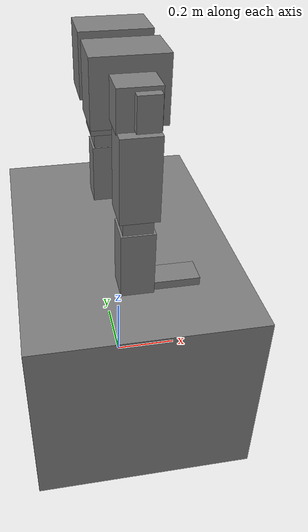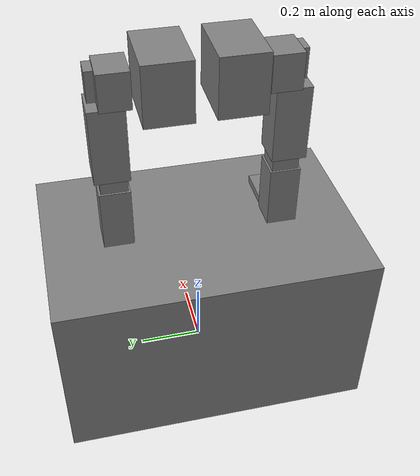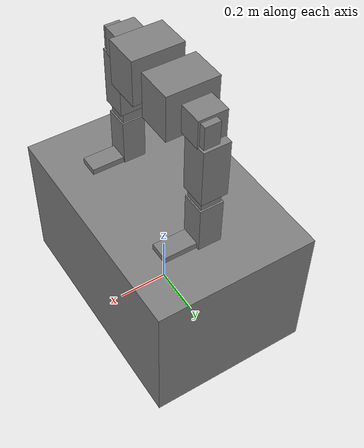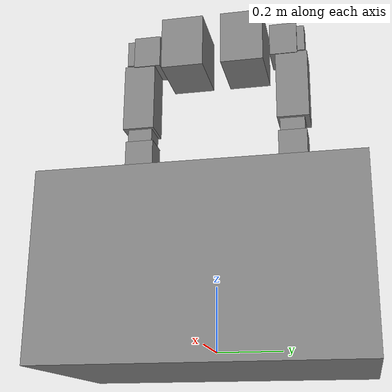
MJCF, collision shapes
<mujoco model="Bessica-D_ILStudio">
  <compiler angle="radian" meshdir="meshes/Bessica-D_v1_0/" autolimits="true" />
  <option cone="elliptic" impratio="20" timestep="0.001" iterations="100" noslip_iterations="10">
    <flag multiccd="enable"/>
  </option>

  <default>
    <default class="arm_position">
      <position kp="80" forcerange="-120 120"/>
    </default>
    <default class="finger_collision">
      <geom condim="6" friction="3 0.15 0.02" solimp="0.95 0.99 0.001 0.5 2" solref="0.002 1"/>
    </default>
    <default class="arm_collision">
      <geom type="box" condim="6" friction="1.5 0.08 0.01" solimp="0.98 0.995 0.001 0.5 2" solref="0.005 1"/>
    </default>
  </default>

  <asset>
    <mesh name="base_link" content_type="model/stl" file="base_link.STL"/>
    <mesh name="right_arm_base_link" content_type="model/stl" file="right_arm_base_link.STL"/>
    <mesh name="right_arm_link1" content_type="model/stl" file="right_arm_link1.STL"/>
    <mesh name="right_arm_link2" content_type="model/stl" file="right_arm_link2.STL"/>
    <mesh name="right_arm_link3" content_type="model/stl" file="right_arm_link3.STL"/>
    <mesh name="right_arm_link4" content_type="model/stl" file="right_arm_link4.STL"/>
    <mesh name="right_arm_link5" content_type="model/stl" file="right_arm_link5.STL"/>
    <mesh name="right_arm_link6" content_type="model/stl" file="right_arm_link6.STL"/>
    <mesh name="right_arm_link7" content_type="model/stl" file="right_arm_link7.STL"/>
    <mesh name="right_arm_gripper_left_finger" content_type="model/stl" file="right_arm_gripper_left_finger.STL"/>
    <mesh name="right_arm_gripper_right_finger" content_type="model/stl" file="right_arm_gripper_right_finger.STL"/>
    <mesh name="left_arm_base_link" content_type="model/stl" file="left_arm_base_link.STL"/>
    <mesh name="left_arm_link1" content_type="model/stl" file="left_arm_link1.STL"/>
    <mesh name="left_arm_link2" content_type="model/stl" file="left_arm_link2.STL"/>
    <mesh name="left_arm_link3" content_type="model/stl" file="left_arm_link3.STL"/>
    <mesh name="left_arm_link4" content_type="model/stl" file="left_arm_link4.STL"/>
    <mesh name="left_arm_link5" content_type="model/stl" file="left_arm_link5.STL"/>
    <mesh name="left_arm_link6" content_type="model/stl" file="left_arm_link6.STL"/>
    <mesh name="left_arm_link7" content_type="model/stl" file="left_arm_link7.STL"/>
    <mesh name="left_arm_gripper_left_finger" content_type="model/stl" file="left_arm_gripper_left_finger.STL"/>
    <mesh name="left_arm_gripper_right_finger" content_type="model/stl" file="left_arm_gripper_right_finger.STL"/>
  </asset>

  <worldbody>
    <body name="bessica_root" quat="0.707107 0 0 0.707107">
      <geom pos="0 0 0" quat="0.5 0.5 0.5 0.5" type="mesh" contype="0" conaffinity="0" group="1" density="0" rgba="0.807843 0.843137 0.905882 1" mesh="base_link"/>
      <geom class="arm_collision" pos="0 0 0.22" quat="0.5 0.5 0.5 0.5" size="0.32 0.28 0.48"/>
      <geom pos="-0.1 0 1.015" quat="-0.5 0.5 0.5 -0.5" type="mesh" contype="0" conaffinity="0" group="1" density="0" rgba="0.592157 0.666667 0.682353 1" mesh="right_arm_base_link"/>
      <geom class="arm_collision" pos="-0.1 0 1.015" quat="-0.5 0.5 0.5 -0.5" size="0.1 0.09 0.07"/>
      <geom pos="0.1 0 1.015" quat="0.5 0.5 0.5 0.5" type="mesh" contype="0" conaffinity="0" group="1" density="0" rgba="0.592157 0.666667 0.682353 1" mesh="left_arm_base_link"/>
      <geom class="arm_collision" pos="0.1 0 1.015" quat="0.5 0.5 0.5 0.5" size="0.1 0.09 0.07"/>
      <!-- Onboard RGB: head + dual wrist (body-fixed, not from scene XML) -->
      <!-- Head cam: offset in -body-Y (toward table) + lower Z so origin sits on front shell, not floating behind/above STL camera boss -->
      <!-- bessica_root quat: body +X -> world +Y; table ~+world X -> look along body -Y, pitched down -->
      <camera name="headview" pos="0 -0.09 1.12" xyaxes="-1 0 0 0 -0.642 0.766" fovy="65"/>
      <body name="right_arm_link1" pos="-0.2145 0 1.015" quat="-0.5 -0.5 -0.5 -0.5">
      <inertial pos="-3.24276e-05 3.91803e-05 -0.0169208" quat="0.082841 0.69859 -0.0864725 0.705431" mass="0.315734" diaginertia="0.000465509 0.000358966 0.000355103"/>
      <joint name="right_arm_joint1" pos="0 0 0" axis="0 0 -1" range="-2.14 2.14"/>
      <geom type="mesh" contype="0" conaffinity="0" group="1" density="0" rgba="0.796078 0.823529 0.937255 1" mesh="right_arm_link1"/>
      <geom class="arm_collision" size="0.055 0.055 0.045" pos="0 0 -0.018"/>
      <body name="right_arm_link2" pos="0 0 -0.04287" quat="0.5 -0.5 0.5 -0.5">
        <inertial pos="0.0294209 0.000476964 0.000518959" quat="0.611373 0.419718 0.487356 0.461025" mass="0.0501482" diaginertia="1.62891e-05 1.57687e-05 7.39432e-06"/>
        <joint name="right_arm_joint2" pos="0 0 0" axis="0 0 1" range="-2.14 2.14"/>
        <geom type="mesh" contype="0" conaffinity="0" group="1" density="0" rgba="0.807843 0.843137 0.905882 1" mesh="right_arm_link2"/>
        <geom class="arm_collision" size="0.045 0.045 0.03" pos="0 0 -0.018"/>
        <body name="right_arm_link3" pos="0.06575 -0.0001 0.0004" quat="0.5 0.5 -0.5 -0.5">
          <inertial pos="-0.00598311 -4.94635e-05 -0.106126" quat="0.998642 -0.000134885 -0.0520953 -0.000162259" mass="0.368447" diaginertia="0.000674481 0.000603424 0.00036087"/>
          <joint name="right_arm_joint3" pos="0 0 0" axis="0 0 -1" range="-2.14 2.14"/>
          <geom type="mesh" contype="0" conaffinity="0" group="1" density="0" rgba="0.807843 0.843137 0.905882 1" mesh="right_arm_link3"/>
          <geom class="arm_collision" size="0.052 0.052 0.115" pos="0 0 -0.1"/>
          <body name="right_arm_link4" pos="0.00384 0 -0.20081" quat="0.707107 -0.707107 0 0">
            <inertial pos="-0.000541939 0.0284058 0.000370347" quat="0.639534 0.763579 -0.0839367 0.0299576" mass="0.0480071" diaginertia="1.64685e-05 1.57747e-05 7.22527e-06"/>
            <joint name="right_arm_joint4" pos="0 0 0" axis="0 0 1" range="-2.14 2.14"/>
            <geom type="mesh" contype="0" conaffinity="0" group="1" density="0" rgba="0.807843 0.843137 0.905882 1" mesh="right_arm_link4"/>
            <geom class="arm_collision" size="0.04 0.06 0.04" pos="0 0.03 0"/>
            <body name="right_arm_link5" pos="0 0.06575 -0.0002" quat="0.707107 0.707107 0 0">
              <inertial pos="-0.00628109 0.000212854 -0.0715506" quat="0.702297 -0.0722103 -0.0708316 0.704661" mass="0.207077" diaginertia="0.000340616 0.000313554 0.000135687"/>
              <joint name="right_arm_joint5" pos="0 0 0" axis="0 0 -1" range="-2.14 2.14"/>
              <geom type="mesh" contype="0" conaffinity="0" group="1" density="0" rgba="0.807843 0.843137 0.905882 1" mesh="right_arm_link5"/>
              <geom class="arm_collision" size="0.046 0.046 0.098" pos="0 0 -0.09"/>
              <body name="right_arm_link6" pos="0.00379 5e-05 -0.1788" quat="0.707107 -0.707107 0 0">
                <inertial pos="-0.000759195 0.0240066 5.58164e-05" quat="0.999602 -0.00398416 -0.000608784 -0.0279095" mass="0.0325623" diaginertia="1.56847e-05 1.2779e-05 9.25012e-06"/>
                <joint name="right_arm_joint6" pos="0 0 0" axis="0 0 1" range="-2.14 2.14"/>
                <geom type="mesh" contype="0" conaffinity="0" group="1" density="0" rgba="0.807843 0.843137 0.905882 1" mesh="right_arm_link6"/>
                <geom class="arm_collision" size="0.038 0.045 0.092" pos="0 0.025 -0.085"/>
                <body name="right_arm_link7" pos="0.0001 0.0556 0.0001" quat="0.5 -0.5 -0.5 0.5">
                  <inertial pos="0.00328545 7.5068e-05 0.0541056" quat="-0.000334602 0.888022 0.000164703 0.4598" mass="0.18191" diaginertia="0.00121978 0.00104138 0.000232198"/>
                  <joint name="right_arm_joint7" pos="0 0 0" axis="0 0 1" range="-2.14 2.14"/>
                  <site name="tcp_right" type="sphere" size="0.008" rgba="1 0.2 0.2 0.35" pos="0 0 0"/>
                  <camera name="rightview" pos="0.08 0 0.03" xyaxes="0 -1 0 0 0 1" fovy="70"/>
                  <geom type="mesh" contype="0" conaffinity="0" group="1" density="0" rgba="0.592157 0.666667 0.682353 1" mesh="right_arm_link7"/>
                  <geom class="arm_collision" size="0.09 0.055 0.075" pos="0.065 0 0.03"/>
                  <body name="right_arm_gripper_left_finger" pos="0.14128 0 0.00015" quat="0.707105 0.707108 0 0">
                    <inertial pos="-0.0434087 0 -0.0106596" mass="0.0256463" diaginertia="8.03607e-06 6.46826e-06 5.13427e-06"/>
                    <joint name="right_arm_gripper_joint" pos="0 0 0" axis="0 0 -1" type="slide" range="0 0.0505"/>
                    <geom type="mesh" contype="0" conaffinity="0" group="1" density="0" rgba="0.592157 0.666667 0.682353 1" mesh="right_arm_gripper_left_finger"/>
                    <geom class="finger_collision" name="right_arm_left_pad_inner_front" type="box" size="0.022 0.01 0.0025" pos="-0.018 0 -0.001"/>
                    <geom class="finger_collision" name="right_arm_left_pad_inner_rear" type="box" size="0.018 0.01 0.0025" pos="-0.046 0 -0.001"/>
                  </body>
                  <body name="right_arm_gripper_right_finger" pos="0.14128 0 0.00015" quat="0.707105 -0.707108 0 0">
                    <inertial pos="-0.0434087 0 -0.0106596" mass="0.0256463" diaginertia="8.03607e-06 6.46826e-06 5.13427e-06"/>
                    <joint name="right_arm_gripper_mirror_joint" pos="0 0 0" axis="0 0 -1" type="slide" range="0 0.0505"/>
                    <geom type="mesh" contype="0" conaffinity="0" group="1" density="0" rgba="0.592157 0.666667 0.682353 1" mesh="right_arm_gripper_right_finger"/>
                    <geom class="finger_collision" name="right_arm_right_pad_inner_front" type="box" size="0.022 0.01 0.0025" pos="-0.018 0 -0.001"/>
                    <geom class="finger_collision" name="right_arm_right_pad_inner_rear" type="box" size="0.018 0.01 0.0025" pos="-0.046 0 -0.001"/>
                  </body>
                </body>
              </body>
            </body>
          </body>
        </body>
      </body>
      </body>
      <body name="left_arm_link1" pos="0.2145 0 1.015" quat="0.5 0.5 0.5 0.5">
      <inertial pos="3.24321e-05 3.91835e-05 0.0169208" quat="-0.0828376 0.69859 0.0864692 0.705431" mass="0.315734" diaginertia="0.000465509 0.000358966 0.000355103"/>
      <joint name="left_arm_joint1" pos="0 0 0" axis="0 0 -1" range="-2.14 2.14"/>
      <geom type="mesh" contype="0" conaffinity="0" group="1" density="0" rgba="0.796078 0.823529 0.937255 1" mesh="left_arm_link1"/>
      <geom class="arm_collision" size="0.055 0.055 0.045" pos="0 0 0.018"/>
      <body name="left_arm_link2" pos="0 0 0.04287" quat="0.5 0.5 -0.5 -0.5">
        <inertial pos="0.0294209 0.000476964 0.000518959" quat="0.611373 0.419718 0.487356 0.461025" mass="0.0501482" diaginertia="1.62891e-05 1.57687e-05 7.39432e-06"/>
        <joint name="left_arm_joint2" pos="0 0 0" axis="0 0 1" range="-2.14 2.14"/>
        <geom type="mesh" contype="0" conaffinity="0" group="1" density="0" rgba="0.807843 0.843137 0.905882 1" mesh="left_arm_link2"/>
        <geom class="arm_collision" size="0.045 0.045 0.03" pos="0 0 0.018"/>
        <body name="left_arm_link3" pos="0.06575 -0.0001 0.0004" quat="0.5 -0.5 0.5 -0.5">
          <inertial pos="-0.00607021 -7.96524e-05 0.105092" quat="0.998634 -0.00013549 0.0522467 0.00015883" mass="0.373333" diaginertia="0.000674969 0.000604631 0.00036243"/>
          <joint name="left_arm_joint3" pos="0 0 0" axis="0 0 -1" range="-2.14 2.14"/>
          <geom type="mesh" contype="0" conaffinity="0" group="1" density="0" rgba="0.807843 0.843137 0.905882 1" mesh="left_arm_link3"/>
          <geom class="arm_collision" size="0.052 0.052 0.115" pos="0 0 0.1"/>
          <body name="left_arm_link4" pos="0.00384 0 0.20081" quat="0.707107 0.707107 0 0">
            <inertial pos="-0.000541939 0.0284058 0.000370347" quat="0.639534 0.763579 -0.0839367 0.0299576" mass="0.0480071" diaginertia="1.64685e-05 1.57747e-05 7.22527e-06"/>
            <joint name="left_arm_joint4" pos="0 0 0" axis="0 0 1" range="-2.14 2.14"/>
            <geom type="mesh" contype="0" conaffinity="0" group="1" density="0" rgba="0.807843 0.843137 0.905882 1" mesh="left_arm_link4"/>
            <geom class="arm_collision" size="0.04 0.06 0.04" pos="0 0.03 0"/>
            <body name="left_arm_link5" pos="0 0.06575 -0.0002" quat="0.707107 -0.707107 0 0">
              <inertial pos="-0.00625733 -0.000212854 0.0763031" quat="0.704661 0.0708316 0.0722103 0.702297" mass="0.207077" diaginertia="0.000340616 0.000313554 0.000135687"/>
              <joint name="left_arm_joint5" pos="0 0 0" axis="0 0 -1" range="-2.14 2.14"/>
              <geom type="mesh" contype="0" conaffinity="0" group="1" density="0" rgba="0.807843 0.843137 0.905882 1" mesh="left_arm_link5"/>
              <geom class="arm_collision" size="0.046 0.046 0.098" pos="0 0 0.09"/>
              <body name="left_arm_link6" pos="0.00379 -5e-05 0.1788" quat="0.707107 0.707107 0 0">
                <inertial pos="-0.000759195 0.0240066 5.58164e-05" quat="0.999602 -0.00398416 -0.000608784 -0.0279095" mass="0.0325623" diaginertia="1.56847e-05 1.2779e-05 9.25012e-06"/>
                <joint name="left_arm_joint6" pos="0 0 0" axis="0 0 1" range="-2.14 2.14"/>
                <geom type="mesh" contype="0" conaffinity="0" group="1" density="0" rgba="0.807843 0.843137 0.905882 1" mesh="left_arm_link6"/>
                <geom class="arm_collision" size="0.038 0.045 0.092" pos="0 0.025 0.085"/>
                <body name="left_arm_link7" pos="0.0001 0.0556 0.0001" quat="0.5 -0.5 -0.5 0.5">
                  <inertial pos="0.00385855 7.37729e-05 0.0532993" quat="-0.000326342 0.88874 0.000157892 0.458411" mass="0.185526" diaginertia="0.00122851 0.00105034 0.000232997"/>
                  <joint name="left_arm_joint7" pos="0 0 0" axis="0 0 1" range="-2.14 2.14"/>
                  <site name="tcp_left" type="sphere" size="0.008" rgba="0.2 0.4 1 0.35" pos="0 0 0"/>
                  <camera name="leftview" pos="0.08 0 0.03" xyaxes="0 -1 0 0 0 1" fovy="70"/>
                  <geom type="mesh" contype="0" conaffinity="0" group="1" density="0" rgba="0.592157 0.666667 0.682353 1" mesh="left_arm_link7"/>
                  <geom class="arm_collision" size="0.09 0.055 0.075" pos="0.065 0 0.03"/>
                  <body name="left_arm_gripper_left_finger" pos="0.14128 0 0.00015" quat="0.707105 0.707108 0 0">
                    <inertial pos="-0.0434087 0 -0.0106596" mass="0.0256463" diaginertia="8.03607e-06 6.46826e-06 5.13427e-06"/>
                    <joint name="left_arm_gripper_joint" pos="0 0 0" axis="0 0 -1" type="slide" range="0 0.0505"/>
                    <geom type="mesh" contype="0" conaffinity="0" group="1" density="0" rgba="0.592157 0.666667 0.682353 1" mesh="left_arm_gripper_left_finger"/>
                    <geom class="finger_collision" name="left_arm_left_pad_inner_front" type="box" size="0.022 0.01 0.0025" pos="-0.018 0 -0.001"/>
                    <geom class="finger_collision" name="left_arm_left_pad_inner_rear" type="box" size="0.018 0.01 0.0025" pos="-0.046 0 -0.001"/>
                  </body>
                  <body name="left_arm_gripper_right_finger" pos="0.14128 0 0.00015" quat="0.707105 -0.707108 0 0">
                    <inertial pos="-0.0434087 0 -0.0106596" mass="0.0256463" diaginertia="8.03607e-06 6.46826e-06 5.13427e-06"/>
                    <joint name="left_arm_gripper_mirror_joint" pos="0 0 0" axis="0 0 -1" type="slide" range="0 0.0505"/>
                    <geom type="mesh" contype="0" conaffinity="0" group="1" density="0" rgba="0.592157 0.666667 0.682353 1" mesh="left_arm_gripper_right_finger"/>
                    <geom class="finger_collision" name="left_arm_right_pad_inner_front" type="box" size="0.022 0.01 0.0025" pos="-0.018 0 -0.001"/>
                    <geom class="finger_collision" name="left_arm_right_pad_inner_rear" type="box" size="0.018 0.01 0.0025" pos="-0.046 0 -0.001"/>
                  </body>
                </body>
              </body>
            </body>
          </body>
        </body>
      </body>
    </body>
    </body>
  </worldbody>

  <equality>
    <joint joint1="right_arm_gripper_joint" joint2="right_arm_gripper_mirror_joint" polycoef="0 1 0 0 0"/>
    <joint joint1="left_arm_gripper_joint" joint2="left_arm_gripper_mirror_joint" polycoef="0 1 0 0 0"/>
  </equality>

  <actuator>
    <position class="arm_position" name="right_arm_joint1" joint="right_arm_joint1"/>
    <position class="arm_position" name="right_arm_joint2" joint="right_arm_joint2"/>
    <position class="arm_position" name="right_arm_joint3" joint="right_arm_joint3"/>
    <position class="arm_position" name="right_arm_joint4" joint="right_arm_joint4"/>
    <position class="arm_position" name="right_arm_joint5" joint="right_arm_joint5"/>
    <position class="arm_position" name="right_arm_joint6" joint="right_arm_joint6"/>
    <position class="arm_position" name="right_arm_joint7" joint="right_arm_joint7"/>
    <position class="arm_position" name="left_arm_joint1" joint="left_arm_joint1"/>
    <position class="arm_position" name="left_arm_joint2" joint="left_arm_joint2"/>
    <position class="arm_position" name="left_arm_joint3" joint="left_arm_joint3"/>
    <position class="arm_position" name="left_arm_joint4" joint="left_arm_joint4"/>
    <position class="arm_position" name="left_arm_joint5" joint="left_arm_joint5"/>
    <position class="arm_position" name="left_arm_joint6" joint="left_arm_joint6"/>
    <position class="arm_position" name="left_arm_joint7" joint="left_arm_joint7"/>
    <position name="right_arm_gripper_joint" joint="right_arm_gripper_joint" kp="300" forcerange="-160 160"/>
    <position name="left_arm_gripper_joint" joint="left_arm_gripper_joint" kp="300" forcerange="-160 160"/>
  </actuator>

  <contact>
    <exclude body1="left_arm_link1" body2="left_arm_link2"/>
    <exclude body1="left_arm_link2" body2="left_arm_link3"/>
    <exclude body1="left_arm_link3" body2="left_arm_link4"/>
    <exclude body1="left_arm_link4" body2="left_arm_link5"/>
    <exclude body1="left_arm_link5" body2="left_arm_link6"/>
    <exclude body1="left_arm_link6" body2="left_arm_link7"/>
    <exclude body1="right_arm_link1" body2="right_arm_link2"/>
    <exclude body1="right_arm_link2" body2="right_arm_link3"/>
    <exclude body1="right_arm_link3" body2="right_arm_link4"/>
    <exclude body1="right_arm_link4" body2="right_arm_link5"/>
    <exclude body1="right_arm_link5" body2="right_arm_link6"/>
    <exclude body1="right_arm_link6" body2="right_arm_link7"/>
    <exclude body1="right_arm_link7" body2="right_arm_gripper_left_finger"/>
    <exclude body1="right_arm_link7" body2="right_arm_gripper_right_finger"/>
    <exclude body1="left_arm_link7" body2="left_arm_gripper_left_finger"/>
    <exclude body1="left_arm_link7" body2="left_arm_gripper_right_finger"/>
  </contact>
</mujoco>
